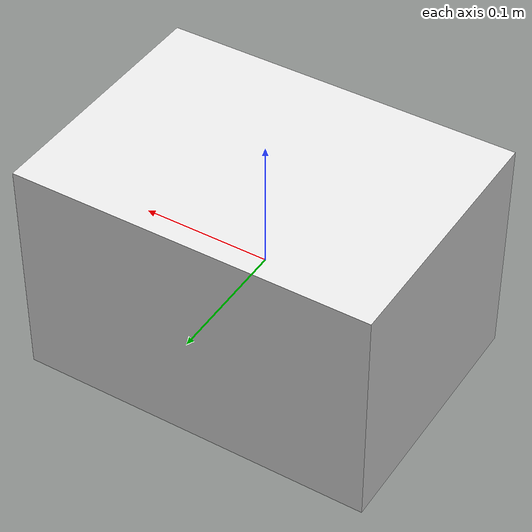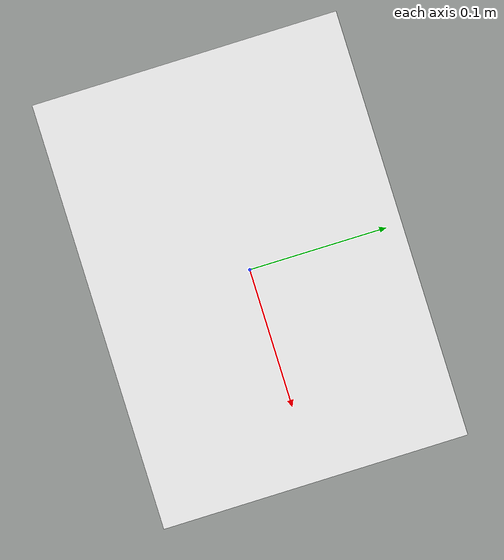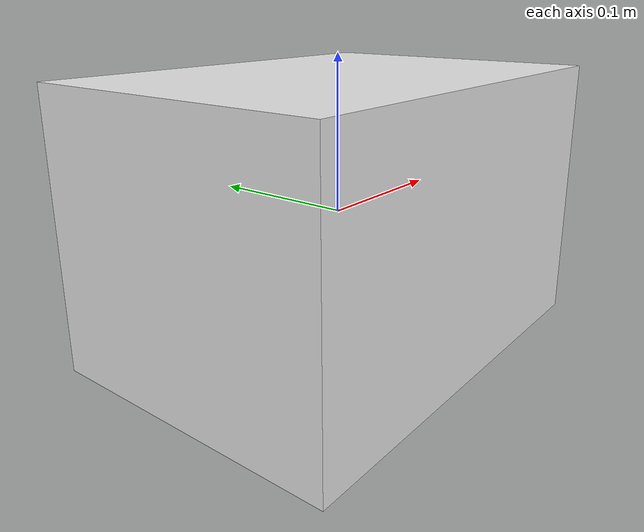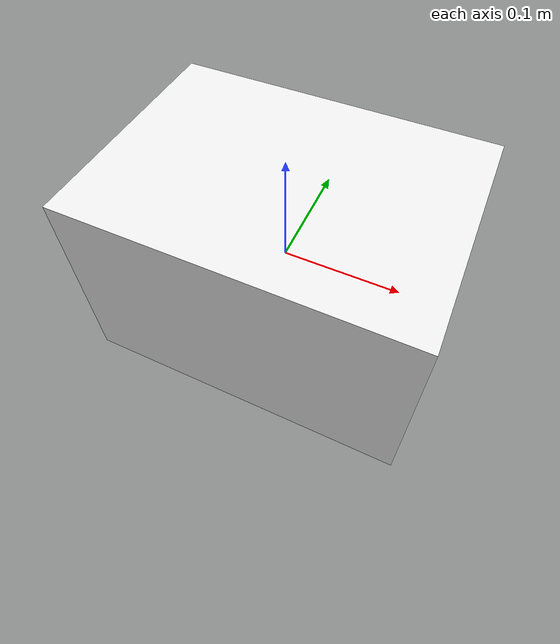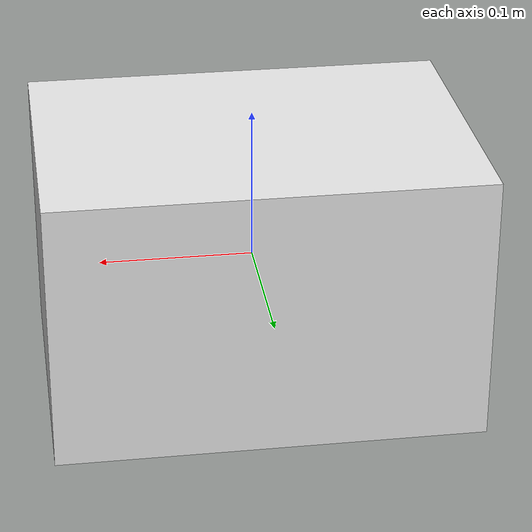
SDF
<?xml version="1.0"?>
<sdf version="1.7">
  <model name="box_intel_nuc">

    <!-- This is a model of an empty Intel NUC box. -->

    <!-- The model for a solid box of uniform density. -->
    <link name="box">
      <inertial>
        <mass>1.45</mass>
        <inertia>
          <ixx>0.00848008333333333</ixx>
          <ixy>0</ixy>
          <ixz>0</ixz>
          <iyy>0.012947533333333332</iyy>
          <iyz>0</iyz>
          <izz>0.01394175</izz>
        </inertia>
      </inertial>

      <visual name="box_visual">
        <geometry>
          <box>
            <size>0.276 0.198 0.176</size>
          </box>
        </geometry>
        <material>
          <diffuse>0.9 0.9 0.9 0.9</diffuse>
        </material>
      </visual>

      <collision name="sphere_center">
        <pose> 0 0 0 0 0 0</pose>
        <geometry>
          <sphere>
            <radius>0.088</radius>
          </sphere>
        </geometry>
        <surface>
          <friction>
            <ode>
              <mu>0.5</mu>
              <mu2>0.5</mu2>
            </ode>
          </friction>
        </surface>
      </collision>

      <collision name="sphere_corner_1">
        <pose> -0.088 -0.049 -0.038 0 0 0</pose>
        <geometry>
          <sphere>
            <radius>0.06</radius>
          </sphere>
        </geometry>
        <surface>
          <friction>
            <ode>
              <mu>0.5</mu>
              <mu2>0.5</mu2>
            </ode>
          </friction>
        </surface>
      </collision>

      <collision name="sphere_corner_2">
        <pose> 0.088 -0.049 -0.038 0 0 0</pose>
        <geometry>
          <sphere>
            <radius>0.06</radius>
          </sphere>
        </geometry>
        <surface>
          <friction>
            <ode>
              <mu>0.5</mu>
              <mu2>0.5</mu2>
            </ode>
          </friction>
        </surface>
      </collision>

      <collision name="sphere_corner_3">
        <pose> -0.088 0.049 -0.038 0 0 0</pose>
        <geometry>
          <sphere>
            <radius>0.06</radius>
          </sphere>
        </geometry>
        <surface>
          <friction>
            <ode>
              <mu>0.5</mu>
              <mu2>0.5</mu2>
            </ode>
          </friction>
        </surface>
      </collision>

      <collision name="sphere_corner_4">
        <pose> 0.088 0.049 -0.038 0 0 0</pose>
        <geometry>
          <sphere>
            <radius>0.06</radius>
          </sphere>
        </geometry>
        <surface>
          <friction>
            <ode>
              <mu>0.5</mu>
              <mu2>0.5</mu2>
            </ode>
          </friction>
        </surface>
      </collision>

      <collision name="sphere_corner_5">
        <pose> -0.088 -0.049 0.038 0 0 0</pose>
        <geometry>
          <sphere>
            <radius>0.06</radius>
          </sphere>
        </geometry>
        <surface>
          <friction>
            <ode>
              <mu>0.5</mu>
              <mu2>0.5</mu2>
            </ode>
          </friction>
        </surface>
      </collision>

      <collision name="sphere_corner_6">
        <pose> 0.088 -0.049 0.038 0 0 0</pose>
        <geometry>
          <sphere>
            <radius>0.06</radius>
          </sphere>
        </geometry>
        <surface>
          <friction>
            <ode>
              <mu>0.5</mu>
              <mu2>0.5</mu2>
            </ode>
          </friction>
        </surface>
      </collision>

      <collision name="sphere_corner_7">
        <pose> -0.088 0.049 0.038 0 0 0</pose>
        <geometry>
          <sphere>
            <radius>0.06</radius>
          </sphere>
        </geometry>
        <surface>
          <friction>
            <ode>
              <mu>0.5</mu>
              <mu2>0.5</mu2>
            </ode>
          </friction>
        </surface>
      </collision>

      <collision name="sphere_corner_8">
        <pose> 0.088 0.049 0.038 0 0 0</pose>
        <geometry>
          <sphere>
            <radius>0.06</radius>
          </sphere>
        </geometry>
        <surface>
          <friction>
            <ode>
              <mu>0.5</mu>
              <mu2>0.5</mu2>
            </ode>
          </friction>
        </surface>
      </collision>

    </link>
  </model>
</sdf>
